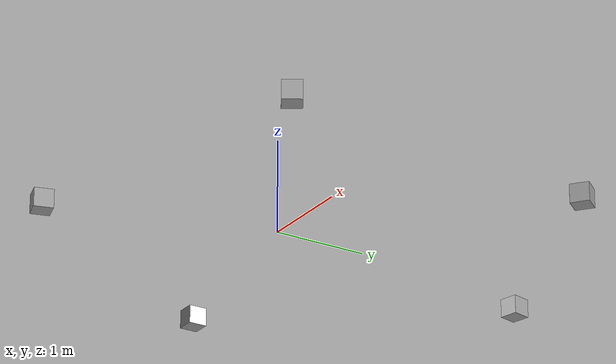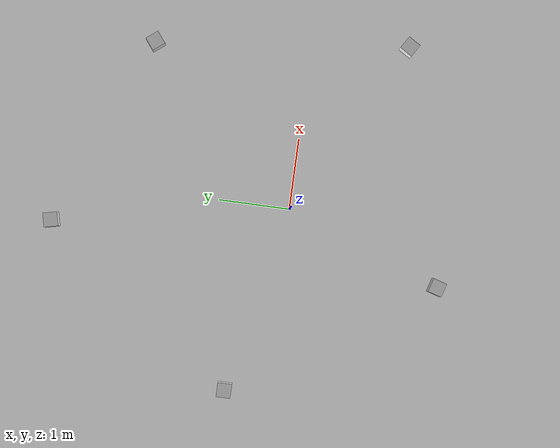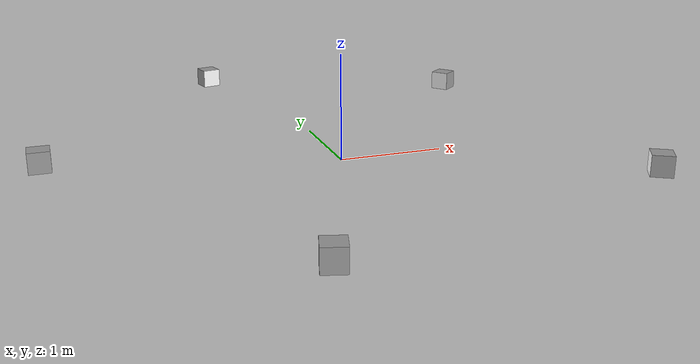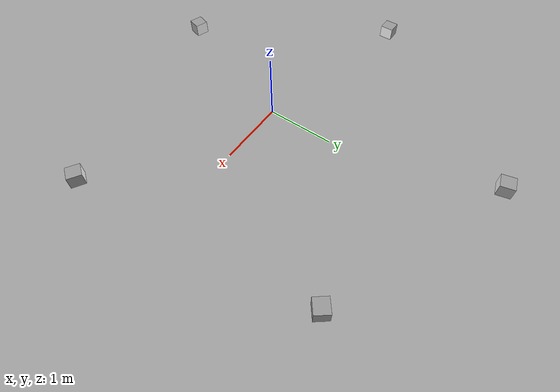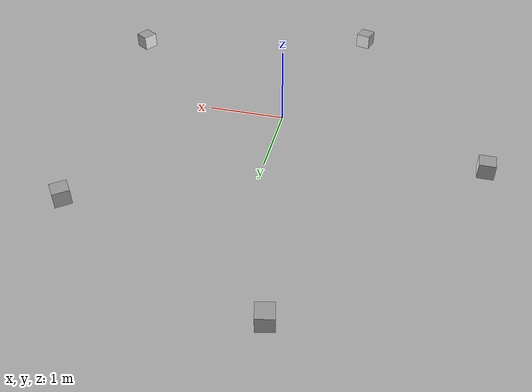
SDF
<?xml version='1.0'?>
<sdf version='1.7'>
  <model name='world5Boxes.world'>
    <model name='marker11_box'>
      <link name='marker'>
        <inertial>
          <mass>0.1</mass>
          <inertia>
            <ixx>0</ixx>
            <ixy>0</ixy>
            <ixz>0</ixz>
            <iyy>0</iyy>
            <iyz>0</iyz>
            <izz>0</izz>
          </inertia>
          <pose>0 0 0 0 -0 0</pose>
        </inertial>
        <self_collide>1</self_collide>
        <kinematic>0</kinematic>
        <gravity>1</gravity>
        <enable_wind>0</enable_wind>
        <pose>-0.76428 -0.101106 0.120004 -0.015494 1.56996 -0.015507</pose>
        <visual name='visual'>
          <geometry>
            <box>
              <size>0.2 0.2 0.001</size>
            </box>
          </geometry>
          <material>
            <script>
              <uri>model://marker11/material/scripts</uri>
              <uri>model://marker11/material/textures</uri>
              <name>Aruco/marker11</name>
            </script>
            <shader type='pixel'>
              <normal_map>__default__</normal_map>
            </shader>
            <emissive>0 0 0 1</emissive>
            <ambient>1 1 1 1</ambient>
            <diffuse>1 1 1 1</diffuse>
            <specular>0 0 0 1</specular>
          </material>
          <pose>0 0 0 0 -0 0</pose>
          <transparency>0</transparency>
          <cast_shadows>1</cast_shadows>
        </visual>
        <collision name='collision'>
          <laser_retro>0</laser_retro>
          <max_contacts>10</max_contacts>
          <pose>0 0 0 0 -0 0</pose>
          <geometry>
            <box>
              <size>0.2 0.2 0.02</size>
            </box>
          </geometry>
          <surface>
            <friction>
              <ode>
                <mu>1</mu>
                <mu2>1</mu2>
                <fdir1>0 0 0</fdir1>
                <slip1>0</slip1>
                <slip2>0</slip2>
              </ode>
              <torsional>
                <coefficient>1</coefficient>
                <patch_radius>0</patch_radius>
                <surface_radius>0</surface_radius>
                <use_patch_radius>1</use_patch_radius>
                <ode>
                  <slip>0</slip>
                </ode>
              </torsional>
            </friction>
            <bounce>
              <restitution_coefficient>0</restitution_coefficient>
              <threshold>1e+06</threshold>
            </bounce>
            <contact>
              <collide_without_contact>0</collide_without_contact>
              <collide_without_contact_bitmask>1</collide_without_contact_bitmask>
              <collide_bitmask>1</collide_bitmask>
              <ode>
                <soft_cfm>0</soft_cfm>
                <soft_erp>0.2</soft_erp>
                <kp>1e+13</kp>
                <kd>1</kd>
                <max_vel>0.01</max_vel>
                <min_depth>0</min_depth>
              </ode>
              <bullet>
                <split_impulse>1</split_impulse>
                <split_impulse_penetration_threshold>-0.01</split_impulse_penetration_threshold>
                <soft_cfm>0</soft_cfm>
                <soft_erp>0.2</soft_erp>
                <kp>1e+13</kp>
                <kd>1</kd>
              </bullet>
            </contact>
          </surface>
        </collision>
      </link>
      <link name='link_1'>
        <inertial>
          <mass>1</mass>
          <inertia>
            <ixx>0.166667</ixx>
            <ixy>0</ixy>
            <ixz>0</ixz>
            <iyy>0.166667</iyy>
            <iyz>0</iyz>
            <izz>0.166667</izz>
          </inertia>
          <pose>0 0 0 0 -0 0</pose>
        </inertial>
        <pose>-0.86428 -0.101106 0.12 -1.3e-05 -4.2e-05 0</pose>
        <gravity>1</gravity>
        <self_collide>0</self_collide>
        <kinematic>0</kinematic>
        <enable_wind>0</enable_wind>
        <visual name='visual'>
          <pose>0 0 0 0 -0 0</pose>
          <geometry>
            <box>
              <size>0.2 0.2 0.2</size>
            </box>
          </geometry>
          <material>
            <lighting>1</lighting>
            <script>
              <uri>file://media/materials/scripts/gazebo.material</uri>
              <name>Gazebo/Grey</name>
            </script>
            <shader type='pixel'>
              <normal_map>__default__</normal_map>
            </shader>
            <emissive>0 0 0 1</emissive>
            <ambient>0.3 0.3 0.3 1</ambient>
            <diffuse>0.7 0.7 0.7 1</diffuse>
            <specular>0.01 0.01 0.01 1</specular>
          </material>
          <transparency>0</transparency>
          <cast_shadows>1</cast_shadows>
        </visual>
        <collision name='collision'>
          <laser_retro>0</laser_retro>
          <max_contacts>10</max_contacts>
          <pose>0 0 0 0 -0 0</pose>
          <geometry>
            <box>
              <size>0.2 0.2 0.2</size>
            </box>
          </geometry>
          <surface>
            <friction>
              <ode>
                <mu>1</mu>
                <mu2>1</mu2>
                <fdir1>0 0 0</fdir1>
                <slip1>0</slip1>
                <slip2>0</slip2>
              </ode>
              <torsional>
                <coefficient>1</coefficient>
                <patch_radius>0</patch_radius>
                <surface_radius>0</surface_radius>
                <use_patch_radius>1</use_patch_radius>
                <ode>
                  <slip>0</slip>
                </ode>
              </torsional>
            </friction>
            <bounce>
              <restitution_coefficient>0</restitution_coefficient>
              <threshold>1e+06</threshold>
            </bounce>
            <contact>
              <collide_without_contact>0</collide_without_contact>
              <collide_without_contact_bitmask>1</collide_without_contact_bitmask>
              <collide_bitmask>1</collide_bitmask>
              <ode>
                <soft_cfm>0</soft_cfm>
                <soft_erp>0.2</soft_erp>
                <kp>1e+13</kp>
                <kd>1</kd>
                <max_vel>0.01</max_vel>
                <min_depth>0</min_depth>
              </ode>
              <bullet>
                <split_impulse>1</split_impulse>
                <split_impulse_penetration_threshold>-0.01</split_impulse_penetration_threshold>
                <soft_cfm>0</soft_cfm>
                <soft_erp>0.2</soft_erp>
                <kp>1e+13</kp>
                <kd>1</kd>
              </bullet>
            </contact>
          </surface>
        </collision>
      </link>
      <joint name='link_1_JOINT_3' type='fixed'>
        <parent>link_1</parent>
        <child>marker</child>
        <pose>0 0 0 0 -0 0</pose>
        <physics>
          <ode>
            <limit>
              <cfm>0</cfm>
              <erp>0.2</erp>
            </limit>
            <suspension>
              <cfm>0</cfm>
              <erp>0.2</erp>
            </suspension>
          </ode>
        </physics>
      </joint>
      <static>0</static>
      <allow_auto_disable>1</allow_auto_disable>
      <pose>-0.674078 -1.33397 -0 0 -0 1.28402</pose>
    </model>
    <model name='marker15_box'>
      <link name='marker'>
        <inertial>
          <mass>0.1</mass>
          <inertia>
            <ixx>0</ixx>
            <ixy>0</ixy>
            <ixz>0</ixz>
            <iyy>0</iyy>
            <iyz>0</iyz>
            <izz>0</izz>
          </inertia>
          <pose>0 0 0 0 -0 0</pose>
        </inertial>
        <self_collide>1</self_collide>
        <kinematic>0</kinematic>
        <gravity>1</gravity>
        <enable_wind>0</enable_wind>
        <pose>-0.76428 -0.101106 0.120004 -0.015494 1.56996 -0.015507</pose>
        <visual name='visual'>
          <geometry>
            <box>
              <size>0.2 0.2 0.001</size>
            </box>
          </geometry>
          <material>
            <script>
              <uri>model://marker15/material/scripts</uri>
              <uri>model://marker15/material/textures</uri>
              <name>Aruco/marker15</name>
            </script>
            <shader type='pixel'>
              <normal_map>__default__</normal_map>
            </shader>
            <emissive>0 0 0 1</emissive>
            <ambient>1 1 1 1</ambient>
            <diffuse>1 1 1 1</diffuse>
            <specular>0 0 0 1</specular>
          </material>
          <pose>0 0 0 0 -0 0</pose>
          <transparency>0</transparency>
          <cast_shadows>1</cast_shadows>
        </visual>
        <collision name='collision'>
          <laser_retro>0</laser_retro>
          <max_contacts>10</max_contacts>
          <pose>0 0 0 0 -0 0</pose>
          <geometry>
            <box>
              <size>0.2 0.2 0.02</size>
            </box>
          </geometry>
          <surface>
            <friction>
              <ode>
                <mu>1</mu>
                <mu2>1</mu2>
                <fdir1>0 0 0</fdir1>
                <slip1>0</slip1>
                <slip2>0</slip2>
              </ode>
              <torsional>
                <coefficient>1</coefficient>
                <patch_radius>0</patch_radius>
                <surface_radius>0</surface_radius>
                <use_patch_radius>1</use_patch_radius>
                <ode>
                  <slip>0</slip>
                </ode>
              </torsional>
            </friction>
            <bounce>
              <restitution_coefficient>0</restitution_coefficient>
              <threshold>1e+06</threshold>
            </bounce>
            <contact>
              <collide_without_contact>0</collide_without_contact>
              <collide_without_contact_bitmask>1</collide_without_contact_bitmask>
              <collide_bitmask>1</collide_bitmask>
              <ode>
                <soft_cfm>0</soft_cfm>
                <soft_erp>0.2</soft_erp>
                <kp>1e+13</kp>
                <kd>1</kd>
                <max_vel>0.01</max_vel>
                <min_depth>0</min_depth>
              </ode>
              <bullet>
                <split_impulse>1</split_impulse>
                <split_impulse_penetration_threshold>-0.01</split_impulse_penetration_threshold>
                <soft_cfm>0</soft_cfm>
                <soft_erp>0.2</soft_erp>
                <kp>1e+13</kp>
                <kd>1</kd>
              </bullet>
            </contact>
          </surface>
        </collision>
      </link>
      <link name='link_1'>
        <inertial>
          <mass>1</mass>
          <inertia>
            <ixx>0.166667</ixx>
            <ixy>0</ixy>
            <ixz>0</ixz>
            <iyy>0.166667</iyy>
            <iyz>0</iyz>
            <izz>0.166667</izz>
          </inertia>
          <pose>0 0 0 0 -0 0</pose>
        </inertial>
        <pose>-0.86428 -0.101106 0.12 -1.3e-05 -4.2e-05 0</pose>
        <gravity>1</gravity>
        <self_collide>0</self_collide>
        <kinematic>0</kinematic>
        <enable_wind>0</enable_wind>
        <visual name='visual'>
          <pose>0 0 0 0 -0 0</pose>
          <geometry>
            <box>
              <size>0.2 0.2 0.2</size>
            </box>
          </geometry>
          <material>
            <lighting>1</lighting>
            <script>
              <uri>file://media/materials/scripts/gazebo.material</uri>
              <name>Gazebo/Grey</name>
            </script>
            <shader type='pixel'>
              <normal_map>__default__</normal_map>
            </shader>
            <emissive>0 0 0 1</emissive>
            <ambient>0.3 0.3 0.3 1</ambient>
            <diffuse>0.7 0.7 0.7 1</diffuse>
            <specular>0.01 0.01 0.01 1</specular>
          </material>
          <transparency>0</transparency>
          <cast_shadows>1</cast_shadows>
        </visual>
        <collision name='collision'>
          <laser_retro>0</laser_retro>
          <max_contacts>10</max_contacts>
          <pose>0 0 0 0 -0 0</pose>
          <geometry>
            <box>
              <size>0.2 0.2 0.2</size>
            </box>
          </geometry>
          <surface>
            <friction>
              <ode>
                <mu>1</mu>
                <mu2>1</mu2>
                <fdir1>0 0 0</fdir1>
                <slip1>0</slip1>
                <slip2>0</slip2>
              </ode>
              <torsional>
                <coefficient>1</coefficient>
                <patch_radius>0</patch_radius>
                <surface_radius>0</surface_radius>
                <use_patch_radius>1</use_patch_radius>
                <ode>
                  <slip>0</slip>
                </ode>
              </torsional>
            </friction>
            <bounce>
              <restitution_coefficient>0</restitution_coefficient>
              <threshold>1e+06</threshold>
            </bounce>
            <contact>
              <collide_without_contact>0</collide_without_contact>
              <collide_without_contact_bitmask>1</collide_without_contact_bitmask>
              <collide_bitmask>1</collide_bitmask>
              <ode>
                <soft_cfm>0</soft_cfm>
                <soft_erp>0.2</soft_erp>
                <kp>1e+13</kp>
                <kd>1</kd>
                <max_vel>0.01</max_vel>
                <min_depth>0</min_depth>
              </ode>
              <bullet>
                <split_impulse>1</split_impulse>
                <split_impulse_penetration_threshold>-0.01</split_impulse_penetration_threshold>
                <soft_cfm>0</soft_cfm>
                <soft_erp>0.2</soft_erp>
                <kp>1e+13</kp>
                <kd>1</kd>
              </bullet>
            </contact>
          </surface>
        </collision>
      </link>
      <joint name='link_1_JOINT_3' type='fixed'>
        <parent>link_1</parent>
        <child>marker</child>
        <pose>0 0 0 0 -0 0</pose>
        <physics>
          <ode>
            <limit>
              <cfm>0</cfm>
              <erp>0.2</erp>
            </limit>
            <suspension>
              <cfm>0</cfm>
              <erp>0.2</erp>
            </suspension>
          </ode>
        </physics>
      </joint>
      <static>0</static>
      <allow_auto_disable>1</allow_auto_disable>
      <pose>1.69835 -1.01281 -0 0 0 2.59268</pose>
    </model>
    <model name='marker19_box'>
      <link name='marker'>
        <inertial>
          <mass>0.1</mass>
          <inertia>
            <ixx>0</ixx>
            <ixy>0</ixy>
            <ixz>0</ixz>
            <iyy>0</iyy>
            <iyz>0</iyz>
            <izz>0</izz>
          </inertia>
          <pose>0 0 0 0 -0 0</pose>
        </inertial>
        <self_collide>1</self_collide>
        <kinematic>0</kinematic>
        <gravity>1</gravity>
        <enable_wind>0</enable_wind>
        <pose>-0.76428 -0.101106 0.120004 -0.015494 1.56996 -0.015507</pose>
        <visual name='visual'>
          <geometry>
            <box>
              <size>0.2 0.2 0.001</size>
            </box>
          </geometry>
          <material>
            <script>
              <uri>model://marker19/material/scripts</uri>
              <uri>model://marker19/material/textures</uri>
              <name>Aruco/marker19</name>
            </script>
            <shader type='pixel'>
              <normal_map>__default__</normal_map>
            </shader>
            <emissive>0 0 0 1</emissive>
            <ambient>1 1 1 1</ambient>
            <diffuse>1 1 1 1</diffuse>
            <specular>0 0 0 1</specular>
          </material>
          <pose>0 0 0 0 -0 0</pose>
          <transparency>0</transparency>
          <cast_shadows>1</cast_shadows>
        </visual>
        <collision name='collision'>
          <laser_retro>0</laser_retro>
          <max_contacts>10</max_contacts>
          <pose>0 0 0 0 -0 0</pose>
          <geometry>
            <box>
              <size>0.2 0.2 0.02</size>
            </box>
          </geometry>
          <surface>
            <friction>
              <ode>
                <mu>1</mu>
                <mu2>1</mu2>
                <fdir1>0 0 0</fdir1>
                <slip1>0</slip1>
                <slip2>0</slip2>
              </ode>
              <torsional>
                <coefficient>1</coefficient>
                <patch_radius>0</patch_radius>
                <surface_radius>0</surface_radius>
                <use_patch_radius>1</use_patch_radius>
                <ode>
                  <slip>0</slip>
                </ode>
              </torsional>
            </friction>
            <bounce>
              <restitution_coefficient>0</restitution_coefficient>
              <threshold>1e+06</threshold>
            </bounce>
            <contact>
              <collide_without_contact>0</collide_without_contact>
              <collide_without_contact_bitmask>1</collide_without_contact_bitmask>
              <collide_bitmask>1</collide_bitmask>
              <ode>
                <soft_cfm>0</soft_cfm>
                <soft_erp>0.2</soft_erp>
                <kp>1e+13</kp>
                <kd>1</kd>
                <max_vel>0.01</max_vel>
                <min_depth>0</min_depth>
              </ode>
              <bullet>
                <split_impulse>1</split_impulse>
                <split_impulse_penetration_threshold>-0.01</split_impulse_penetration_threshold>
                <soft_cfm>0</soft_cfm>
                <soft_erp>0.2</soft_erp>
                <kp>1e+13</kp>
                <kd>1</kd>
              </bullet>
            </contact>
          </surface>
        </collision>
      </link>
      <link name='link_1'>
        <inertial>
          <mass>1</mass>
          <inertia>
            <ixx>0.166667</ixx>
            <ixy>0</ixy>
            <ixz>0</ixz>
            <iyy>0.166667</iyy>
            <iyz>0</iyz>
            <izz>0.166667</izz>
          </inertia>
          <pose>0 0 0 0 -0 0</pose>
        </inertial>
        <pose>-0.86428 -0.101106 0.12 -1.3e-05 -4.2e-05 0</pose>
        <gravity>1</gravity>
        <self_collide>0</self_collide>
        <kinematic>0</kinematic>
        <enable_wind>0</enable_wind>
        <visual name='visual'>
          <pose>0 0 0 0 -0 0</pose>
          <geometry>
            <box>
              <size>0.2 0.2 0.2</size>
            </box>
          </geometry>
          <material>
            <lighting>1</lighting>
            <script>
              <uri>file://media/materials/scripts/gazebo.material</uri>
              <name>Gazebo/Grey</name>
            </script>
            <shader type='pixel'>
              <normal_map>__default__</normal_map>
            </shader>
            <emissive>0 0 0 1</emissive>
            <ambient>0.3 0.3 0.3 1</ambient>
            <diffuse>0.7 0.7 0.7 1</diffuse>
            <specular>0.01 0.01 0.01 1</specular>
          </material>
          <transparency>0</transparency>
          <cast_shadows>1</cast_shadows>
        </visual>
        <collision name='collision'>
          <laser_retro>0</laser_retro>
          <max_contacts>10</max_contacts>
          <pose>0 0 0 0 -0 0</pose>
          <geometry>
            <box>
              <size>0.2 0.2 0.2</size>
            </box>
          </geometry>
          <surface>
            <friction>
              <ode>
                <mu>1</mu>
                <mu2>1</mu2>
                <fdir1>0 0 0</fdir1>
                <slip1>0</slip1>
                <slip2>0</slip2>
              </ode>
              <torsional>
                <coefficient>1</coefficient>
                <patch_radius>0</patch_radius>
                <surface_radius>0</surface_radius>
                <use_patch_radius>1</use_patch_radius>
                <ode>
                  <slip>0</slip>
                </ode>
              </torsional>
            </friction>
            <bounce>
              <restitution_coefficient>0</restitution_coefficient>
              <threshold>1e+06</threshold>
            </bounce>
            <contact>
              <collide_without_contact>0</collide_without_contact>
              <collide_without_contact_bitmask>1</collide_without_contact_bitmask>
              <collide_bitmask>1</collide_bitmask>
              <ode>
                <soft_cfm>0</soft_cfm>
                <soft_erp>0.2</soft_erp>
                <kp>1e+13</kp>
                <kd>1</kd>
                <max_vel>0.01</max_vel>
                <min_depth>0</min_depth>
              </ode>
              <bullet>
                <split_impulse>1</split_impulse>
                <split_impulse_penetration_threshold>-0.01</split_impulse_penetration_threshold>
                <soft_cfm>0</soft_cfm>
                <soft_erp>0.2</soft_erp>
                <kp>1e+13</kp>
                <kd>1</kd>
              </bullet>
            </contact>
          </surface>
        </collision>
      </link>
      <joint name='link_1_JOINT_3' type='fixed'>
        <parent>link_1</parent>
        <child>marker</child>
        <pose>0 0 0 0 -0 0</pose>
        <physics>
          <ode>
            <limit>
              <cfm>0</cfm>
              <erp>0.2</erp>
            </limit>
            <suspension>
              <cfm>0</cfm>
              <erp>0.2</erp>
            </suspension>
          </ode>
        </physics>
      </joint>
      <static>0</static>
      <allow_auto_disable>1</allow_auto_disable>
      <pose>1.47192 1.57926 8.4e-05 0 0 -2.48002</pose>
    </model>
    <model name='marker20_box'>
      <link name='marker'>
        <inertial>
          <mass>0.1</mass>
          <inertia>
            <ixx>0</ixx>
            <ixy>0</ixy>
            <ixz>0</ixz>
            <iyy>0</iyy>
            <iyz>0</iyz>
            <izz>0</izz>
          </inertia>
          <pose>0 0 0 0 -0 0</pose>
        </inertial>
        <self_collide>1</self_collide>
        <kinematic>0</kinematic>
        <gravity>1</gravity>
        <enable_wind>0</enable_wind>
        <pose>-0.76428 -0.101106 0.120004 -0.015494 1.56996 -0.015507</pose>
        <visual name='visual'>
          <geometry>
            <box>
              <size>0.2 0.2 0.001</size>
            </box>
          </geometry>
          <material>
            <script>
              <uri>model://marker20/material/scripts</uri>
              <uri>model://marker20/material/textures</uri>
              <name>Aruco/marker20</name>
            </script>
            <shader type='pixel'>
              <normal_map>__default__</normal_map>
            </shader>
            <emissive>0 0 0 1</emissive>
            <ambient>1 1 1 1</ambient>
            <diffuse>1 1 1 1</diffuse>
            <specular>0 0 0 1</specular>
          </material>
          <pose>0 0 0 0 -0 0</pose>
          <transparency>0</transparency>
          <cast_shadows>1</cast_shadows>
        </visual>
        <collision name='collision'>
          <laser_retro>0</laser_retro>
          <max_contacts>10</max_contacts>
          <pose>0 0 0 0 -0 0</pose>
          <geometry>
            <box>
              <size>0.2 0.2 0.02</size>
            </box>
          </geometry>
          <surface>
            <friction>
              <ode>
                <mu>1</mu>
                <mu2>1</mu2>
                <fdir1>0 0 0</fdir1>
                <slip1>0</slip1>
                <slip2>0</slip2>
              </ode>
              <torsional>
                <coefficient>1</coefficient>
                <patch_radius>0</patch_radius>
                <surface_radius>0</surface_radius>
                <use_patch_radius>1</use_patch_radius>
                <ode>
                  <slip>0</slip>
                </ode>
              </torsional>
            </friction>
            <bounce>
              <restitution_coefficient>0</restitution_coefficient>
              <threshold>1e+06</threshold>
            </bounce>
            <contact>
              <collide_without_contact>0</collide_without_contact>
              <collide_without_contact_bitmask>1</collide_without_contact_bitmask>
              <collide_bitmask>1</collide_bitmask>
              <ode>
                <soft_cfm>0</soft_cfm>
                <soft_erp>0.2</soft_erp>
                <kp>1e+13</kp>
                <kd>1</kd>
                <max_vel>0.01</max_vel>
                <min_depth>0</min_depth>
              </ode>
              <bullet>
                <split_impulse>1</split_impulse>
                <split_impulse_penetration_threshold>-0.01</split_impulse_penetration_threshold>
                <soft_cfm>0</soft_cfm>
                <soft_erp>0.2</soft_erp>
                <kp>1e+13</kp>
                <kd>1</kd>
              </bullet>
            </contact>
          </surface>
        </collision>
      </link>
      <link name='link_1'>
        <inertial>
          <mass>1</mass>
          <inertia>
            <ixx>0.166667</ixx>
            <ixy>0</ixy>
            <ixz>0</ixz>
            <iyy>0.166667</iyy>
            <iyz>0</iyz>
            <izz>0.166667</izz>
          </inertia>
          <pose>0 0 0 0 -0 0</pose>
        </inertial>
        <pose>-0.86428 -0.101106 0.12 -1.3e-05 -4.2e-05 0</pose>
        <gravity>1</gravity>
        <self_collide>0</self_collide>
        <kinematic>0</kinematic>
        <enable_wind>0</enable_wind>
        <visual name='visual'>
          <pose>0 0 0 0 -0 0</pose>
          <geometry>
            <box>
              <size>0.2 0.2 0.2</size>
            </box>
          </geometry>
          <material>
            <lighting>1</lighting>
            <script>
              <uri>file://media/materials/scripts/gazebo.material</uri>
              <name>Gazebo/Grey</name>
            </script>
            <shader type='pixel'>
              <normal_map>__default__</normal_map>
            </shader>
            <emissive>0 0 0 1</emissive>
            <ambient>0.3 0.3 0.3 1</ambient>
            <diffuse>0.7 0.7 0.7 1</diffuse>
            <specular>0.01 0.01 0.01 1</specular>
          </material>
          <transparency>0</transparency>
          <cast_shadows>1</cast_shadows>
        </visual>
        <collision name='collision'>
          <laser_retro>0</laser_retro>
          <max_contacts>10</max_contacts>
          <pose>0 0 0 0 -0 0</pose>
          <geometry>
            <box>
              <size>0.2 0.2 0.2</size>
            </box>
          </geometry>
          <surface>
            <friction>
              <ode>
                <mu>1</mu>
                <mu2>1</mu2>
                <fdir1>0 0 0</fdir1>
                <slip1>0</slip1>
                <slip2>0</slip2>
              </ode>
              <torsional>
                <coefficient>1</coefficient>
                <patch_radius>0</patch_radius>
                <surface_radius>0</surface_radius>
                <use_patch_radius>1</use_patch_radius>
                <ode>
                  <slip>0</slip>
                </ode>
              </torsional>
            </friction>
            <bounce>
              <restitution_coefficient>0</restitution_coefficient>
              <threshold>1e+06</threshold>
            </bounce>
            <contact>
              <collide_without_contact>0</collide_without_contact>
              <collide_without_contact_bitmask>1</collide_without_contact_bitmask>
              <collide_bitmask>1</collide_bitmask>
              <ode>
                <soft_cfm>0</soft_cfm>
                <soft_erp>0.2</soft_erp>
                <kp>1e+13</kp>
                <kd>1</kd>
                <max_vel>0.01</max_vel>
                <min_depth>0</min_depth>
              </ode>
              <bullet>
                <split_impulse>1</split_impulse>
                <split_impulse_penetration_threshold>-0.01</split_impulse_penetration_threshold>
                <soft_cfm>0</soft_cfm>
                <soft_erp>0.2</soft_erp>
                <kp>1e+13</kp>
                <kd>1</kd>
              </bullet>
            </contact>
          </surface>
        </collision>
      </link>
      <joint name='link_1_JOINT_3' type='fixed'>
        <parent>link_1</parent>
        <child>marker</child>
        <pose>0 0 0 0 -0 0</pose>
        <physics>
          <ode>
            <limit>
              <cfm>0</cfm>
              <erp>0.2</erp>
            </limit>
            <suspension>
              <cfm>0</cfm>
              <erp>0.2</erp>
            </suspension>
          </ode>
        </physics>
      </joint>
      <static>0</static>
      <allow_auto_disable>1</allow_auto_disable>
      <pose>-1.77232 0.676942 -1.5e-05 0 -0 0</pose>
    </model>
    <model name='marker21_box'>
      <link name='marker'>
        <inertial>
          <mass>0.1</mass>
          <inertia>
            <ixx>0</ixx>
            <ixy>0</ixy>
            <ixz>0</ixz>
            <iyy>0</iyy>
            <iyz>0</iyz>
            <izz>0</izz>
          </inertia>
          <pose>0 0 0 0 -0 0</pose>
        </inertial>
        <self_collide>1</self_collide>
        <kinematic>0</kinematic>
        <gravity>1</gravity>
        <enable_wind>0</enable_wind>
        <pose>-0.76428 -0.101106 0.120004 -0.015494 1.56996 -0.015507</pose>
        <visual name='visual'>
          <geometry>
            <box>
              <size>0.2 0.2 0.001</size>
            </box>
          </geometry>
          <material>
            <script>
              <uri>model://marker21/material/scripts</uri>
              <uri>model://marker21/material/textures</uri>
              <name>Aruco/marker21</name>
            </script>
            <shader type='pixel'>
              <normal_map>__default__</normal_map>
            </shader>
            <emissive>0 0 0 1</emissive>
            <ambient>1 1 1 1</ambient>
            <diffuse>1 1 1 1</diffuse>
            <specular>0 0 0 1</specular>
          </material>
          <pose>0 0 0 0 -0 0</pose>
          <transparency>0</transparency>
          <cast_shadows>1</cast_shadows>
        </visual>
        <collision name='collision'>
          <laser_retro>0</laser_retro>
          <max_contacts>10</max_contacts>
          <pose>0 0 0 0 -0 0</pose>
          <geometry>
            <box>
              <size>0.2 0.2 0.02</size>
            </box>
          </geometry>
          <surface>
            <friction>
              <ode>
                <mu>1</mu>
                <mu2>1</mu2>
                <fdir1>0 0 0</fdir1>
                <slip1>0</slip1>
                <slip2>0</slip2>
              </ode>
              <torsional>
                <coefficient>1</coefficient>
                <patch_radius>0</patch_radius>
                <surface_radius>0</surface_radius>
                <use_patch_radius>1</use_patch_radius>
                <ode>
                  <slip>0</slip>
                </ode>
              </torsional>
            </friction>
            <bounce>
              <restitution_coefficient>0</restitution_coefficient>
              <threshold>1e+06</threshold>
            </bounce>
            <contact>
              <collide_without_contact>0</collide_without_contact>
              <collide_without_contact_bitmask>1</collide_without_contact_bitmask>
              <collide_bitmask>1</collide_bitmask>
              <ode>
                <soft_cfm>0</soft_cfm>
                <soft_erp>0.2</soft_erp>
                <kp>1e+13</kp>
                <kd>1</kd>
                <max_vel>0.01</max_vel>
                <min_depth>0</min_depth>
              </ode>
              <bullet>
                <split_impulse>1</split_impulse>
                <split_impulse_penetration_threshold>-0.01</split_impulse_penetration_threshold>
                <soft_cfm>0</soft_cfm>
                <soft_erp>0.2</soft_erp>
                <kp>1e+13</kp>
                <kd>1</kd>
              </bullet>
            </contact>
          </surface>
        </collision>
      </link>
      <link name='link_1'>
        <inertial>
          <mass>1</mass>
          <inertia>
            <ixx>0.166667</ixx>
            <ixy>0</ixy>
            <ixz>0</ixz>
            <iyy>0.166667</iyy>
            <iyz>0</iyz>
            <izz>0.166667</izz>
          </inertia>
          <pose>0 0 0 0 -0 0</pose>
        </inertial>
        <pose>-0.86428 -0.101106 0.12 -1.3e-05 -4.2e-05 0</pose>
        <gravity>1</gravity>
        <self_collide>0</self_collide>
        <kinematic>0</kinematic>
        <enable_wind>0</enable_wind>
        <visual name='visual'>
          <pose>0 0 0 0 -0 0</pose>
          <geometry>
            <box>
              <size>0.2 0.2 0.2</size>
            </box>
          </geometry>
          <material>
            <lighting>1</lighting>
            <script>
              <uri>file://media/materials/scripts/gazebo.material</uri>
              <name>Gazebo/Grey</name>
            </script>
            <shader type='pixel'>
              <normal_map>__default__</normal_map>
            </shader>
            <emissive>0 0 0 1</emissive>
            <ambient>0.3 0.3 0.3 1</ambient>
            <diffuse>0.7 0.7 0.7 1</diffuse>
            <specular>0.01 0.01 0.01 1</specular>
          </material>
          <transparency>0</transparency>
          <cast_shadows>1</cast_shadows>
        </visual>
        <collision name='collision'>
          <laser_retro>0</laser_retro>
          <max_contacts>10</max_contacts>
          <pose>0 0 0 0 -0 0</pose>
          <geometry>
            <box>
              <size>0.2 0.2 0.2</size>
            </box>
          </geometry>
          <surface>
            <friction>
              <ode>
                <mu>1</mu>
                <mu2>1</mu2>
                <fdir1>0 0 0</fdir1>
                <slip1>0</slip1>
                <slip2>0</slip2>
              </ode>
              <torsional>
                <coefficient>1</coefficient>
                <patch_radius>0</patch_radius>
                <surface_radius>0</surface_radius>
                <use_patch_radius>1</use_patch_radius>
                <ode>
                  <slip>0</slip>
                </ode>
              </torsional>
            </friction>
            <bounce>
              <restitution_coefficient>0</restitution_coefficient>
              <threshold>1e+06</threshold>
            </bounce>
            <contact>
              <collide_without_contact>0</collide_without_contact>
              <collide_without_contact_bitmask>1</collide_without_contact_bitmask>
              <collide_bitmask>1</collide_bitmask>
              <ode>
                <soft_cfm>0</soft_cfm>
                <soft_erp>0.2</soft_erp>
                <kp>1e+13</kp>
                <kd>1</kd>
                <max_vel>0.01</max_vel>
                <min_depth>0</min_depth>
              </ode>
              <bullet>
                <split_impulse>1</split_impulse>
                <split_impulse_penetration_threshold>-0.01</split_impulse_penetration_threshold>
                <soft_cfm>0</soft_cfm>
                <soft_erp>0.2</soft_erp>
                <kp>1e+13</kp>
                <kd>1</kd>
              </bullet>
            </contact>
          </surface>
        </collision>
      </link>
      <joint name='link_1_JOINT_3' type='fixed'>
        <parent>link_1</parent>
        <child>marker</child>
        <pose>0 0 0 0 -0 0</pose>
        <physics>
          <ode>
            <limit>
              <cfm>0</cfm>
              <erp>0.2</erp>
            </limit>
            <suspension>
              <cfm>0</cfm>
              <erp>0.2</erp>
            </suspension>
          </ode>
        </physics>
      </joint>
      <static>0</static>
      <allow_auto_disable>1</allow_auto_disable>
      <pose>-0.298252 2.48749 0 0 0 -1.33703</pose>
    </model>
    <static>0</static>
    <allow_auto_disable>1</allow_auto_disable>
  </model>
</sdf>
